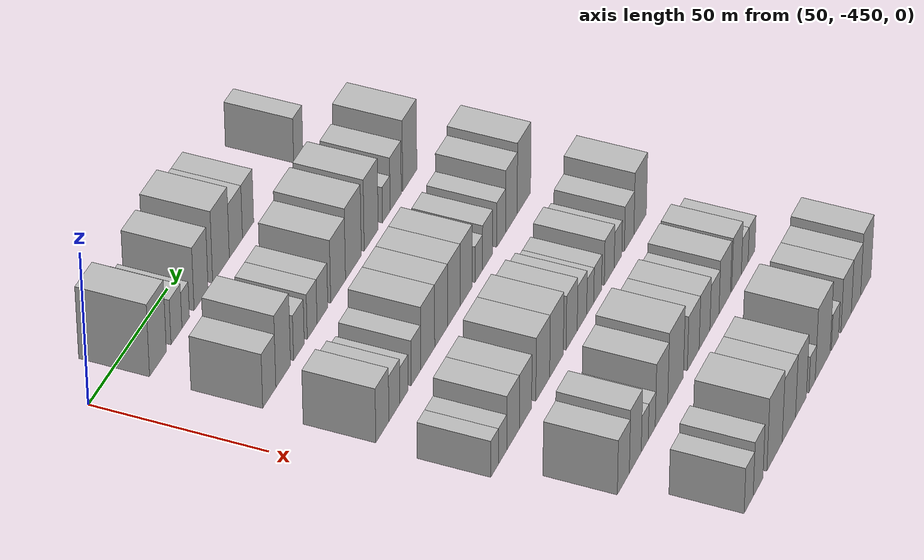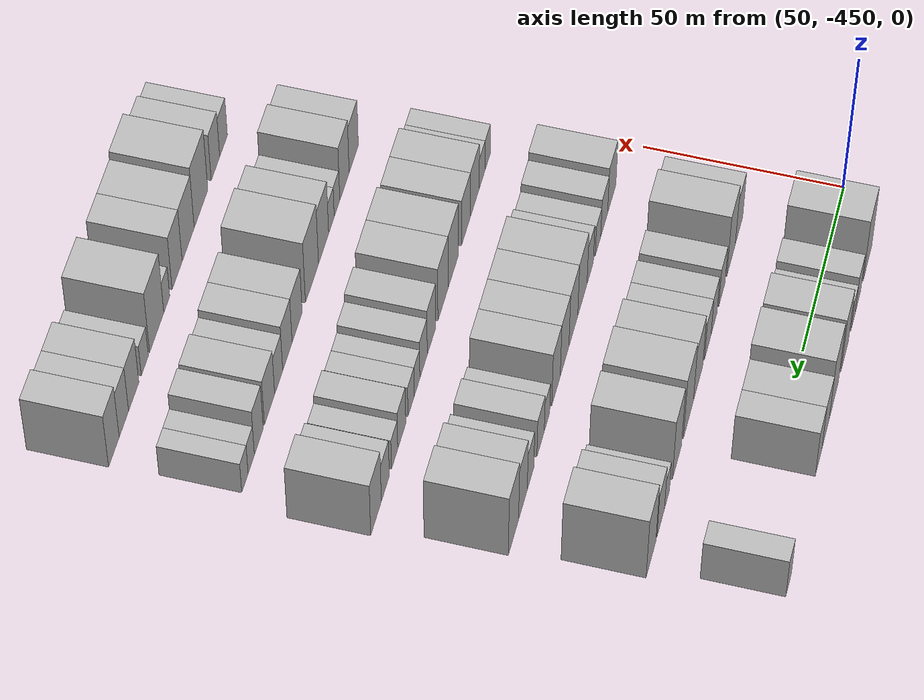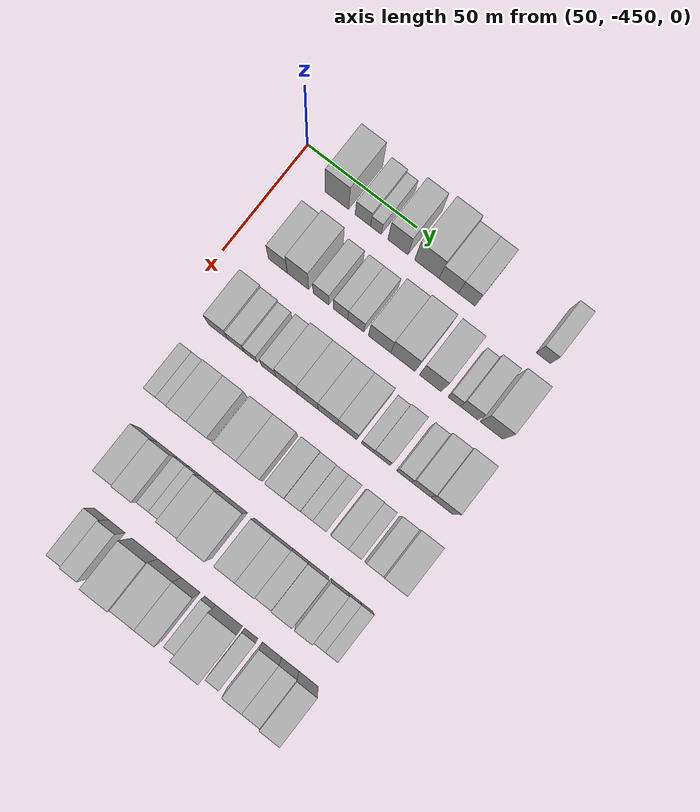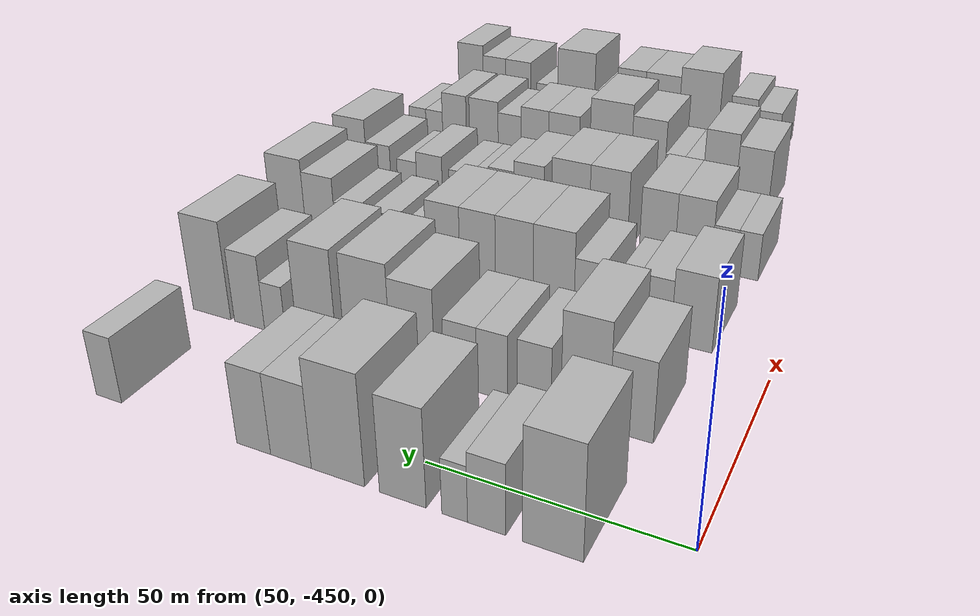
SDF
<sdf version="1.6">
 <world name="default">
  <model name="building_13">
   <static>1</static>
   <pose>50.0000 -428.8946 0 0.000000 0.000000 0.000000</pose>
   <link name="link">
    <pose>0 0 12.00 0 0 0</pose>
    <collision name="collision"><geometry><box><size>20.0000 10.7026 24.0000</size></box></geometry></collision>
    <visual name="visual">
     <cast_shadows>0</cast_shadows>
     <geometry><box><size>20.0000 10.7026 24.0000</size></box></geometry>
     <material>
      <script>
       <uri>model://HANNAS_wall/materials/scripts</uri>
       <uri>model://HANNAS_wall/materials/textures</uri>
       <name>vrc/HANNAS_wall</name>
      </script>
     </material>
    </visual>
   </link>
  </model>
  <model name="building_14">
   <static>1</static>
   <pose>50.0000 -417.0300 0 0.000000 0.000000 0.000000</pose>
   <link name="link">
    <pose>0 0 7.50 0 0 0</pose>
    <collision name="collision"><geometry><box><size>20.0000 7.0265 15.0000</size></box></geometry></collision>
    <visual name="visual">
     <cast_shadows>0</cast_shadows>
     <geometry><box><size>20.0000 7.0265 15.0000</size></box></geometry>
     <material>
      <script>
       <uri>model://HANNAS_wall/materials/scripts</uri>
       <uri>model://HANNAS_wall/materials/textures</uri>
       <name>vrc/HANNAS_wall</name>
      </script>
     </material>
    </visual>
   </link>
  </model>
  <model name="building_15">
   <static>1</static>
   <pose>50.0000 -411.0758 0 0.000000 0.000000 0.000000</pose>
   <link name="link">
    <pose>0 0 6.00 0 0 0</pose>
    <collision name="collision"><geometry><box><size>20.0000 4.8819 12.0000</size></box></geometry></collision>
    <visual name="visual">
     <cast_shadows>0</cast_shadows>
     <geometry><box><size>20.0000 4.8819 12.0000</size></box></geometry>
     <material>
      <script>
       <uri>model://HANNAS_wall/materials/scripts</uri>
       <uri>model://HANNAS_wall/materials/textures</uri>
       <name>vrc/HANNAS_wall</name>
      </script>
     </material>
    </visual>
   </link>
  </model>
  <model name="building_16">
   <static>1</static>
   <pose>50.0000 -401.0472 0 0.000000 0.000000 0.000000</pose>
   <link name="link">
    <pose>0 0 10.50 0 0 0</pose>
    <collision name="collision"><geometry><box><size>20.0000 9.1753 21.0000</size></box></geometry></collision>
    <visual name="visual">
     <cast_shadows>0</cast_shadows>
     <geometry><box><size>20.0000 9.1753 21.0000</size></box></geometry>
     <material>
      <script>
       <uri>model://HANNAS_wall/materials/scripts</uri>
       <uri>model://HANNAS_wall/materials/textures</uri>
       <name>vrc/HANNAS_wall</name>
      </script>
     </material>
    </visual>
   </link>
  </model>
  <model name="building_17">
   <static>1</static>
   <pose>50.0000 -387.9378 0 0.000000 0.000000 0.000000</pose>
   <link name="link">
    <pose>0 0 12.00 0 0 0</pose>
    <collision name="collision"><geometry><box><size>20.0000 11.0435 24.0000</size></box></geometry></collision>
    <visual name="visual">
     <cast_shadows>0</cast_shadows>
     <geometry><box><size>20.0000 11.0435 24.0000</size></box></geometry>
     <material>
      <script>
       <uri>model://HANNAS_wall/materials/scripts</uri>
       <uri>model://HANNAS_wall/materials/textures</uri>
       <name>vrc/HANNAS_wall</name>
      </script>
     </material>
    </visual>
   </link>
  </model>
  <model name="building_18">
   <static>1</static>
   <pose>50.0000 -378.0178 0 0.000000 0.000000 0.000000</pose>
   <link name="link">
    <pose>0 0 9.00 0 0 0</pose>
    <collision name="collision"><geometry><box><size>20.0000 8.7965 18.0000</size></box></geometry></collision>
    <visual name="visual">
     <cast_shadows>0</cast_shadows>
     <geometry><box><size>20.0000 8.7965 18.0000</size></box></geometry>
     <material>
      <script>
       <uri>model://HANNAS_wall/materials/scripts</uri>
       <uri>model://HANNAS_wall/materials/textures</uri>
       <name>vrc/HANNAS_wall</name>
      </script>
     </material>
    </visual>
   </link>
  </model>
  <model name="building_19">
   <static>1</static>
   <pose>50.0000 -369.8452 0 0.000000 0.000000 0.000000</pose>
   <link name="link">
    <pose>0 0 9.00 0 0 0</pose>
    <collision name="collision"><geometry><box><size>20.0000 7.5487 18.0000</size></box></geometry></collision>
    <visual name="visual">
     <cast_shadows>0</cast_shadows>
     <geometry><box><size>20.0000 7.5487 18.0000</size></box></geometry>
     <material>
      <script>
       <uri>model://HANNAS_wall/materials/scripts</uri>
       <uri>model://HANNAS_wall/materials/textures</uri>
       <name>vrc/HANNAS_wall</name>
      </script>
     </material>
    </visual>
   </link>
  </model>
  <model name="building_20">
   <static>1</static>
   <pose>50.0000 -335.5107 0 0.000000 0.000000 0.000000</pose>
   <link name="link">
    <pose>0 0 7.50 0 0 0</pose>
    <collision name="collision"><geometry><box><size>20.0000 6.3734 15.0000</size></box></geometry></collision>
    <visual name="visual">
     <cast_shadows>0</cast_shadows>
     <geometry><box><size>20.0000 6.3734 15.0000</size></box></geometry>
     <material>
      <script>
       <uri>model://HANNAS_wall/materials/scripts</uri>
       <uri>model://HANNAS_wall/materials/textures</uri>
       <name>vrc/HANNAS_wall</name>
      </script>
     </material>
    </visual>
   </link>
  </model>
  <model name="building_127">
   <static>1</static>
   <pose>82.0000 -430.8109 0 0.000000 0.000000 0.000000</pose>
   <link name="link">
    <pose>0 0 9.00 0 0 0</pose>
    <collision name="collision"><geometry><box><size>20.0000 8.6048 18.0000</size></box></geometry></collision>
    <visual name="visual">
     <cast_shadows>0</cast_shadows>
     <geometry><box><size>20.0000 8.6048 18.0000</size></box></geometry>
     <material>
      <script>
       <uri>model://HANNAS_wall/materials/scripts</uri>
       <uri>model://HANNAS_wall/materials/textures</uri>
       <name>vrc/HANNAS_wall</name>
      </script>
     </material>
    </visual>
   </link>
  </model>
  <model name="building_128">
   <static>1</static>
   <pose>82.0000 -421.6455 0 0.000000 0.000000 0.000000</pose>
   <link name="link">
    <pose>0 0 12.00 0 0 0</pose>
    <collision name="collision"><geometry><box><size>20.0000 9.7260 24.0000</size></box></geometry></collision>
    <visual name="visual">
     <cast_shadows>0</cast_shadows>
     <geometry><box><size>20.0000 9.7260 24.0000</size></box></geometry>
     <material>
      <script>
       <uri>model://HANNAS_wall/materials/scripts</uri>
       <uri>model://HANNAS_wall/materials/textures</uri>
       <name>vrc/HANNAS_wall</name>
      </script>
     </material>
    </visual>
   </link>
  </model>
  <model name="building_129">
   <static>1</static>
   <pose>82.0000 -411.2193 0 0.000000 0.000000 0.000000</pose>
   <link name="link">
    <pose>0 0 7.50 0 0 0</pose>
    <collision name="collision"><geometry><box><size>20.0000 7.1265 15.0000</size></box></geometry></collision>
    <visual name="visual">
     <cast_shadows>0</cast_shadows>
     <geometry><box><size>20.0000 7.1265 15.0000</size></box></geometry>
     <material>
      <script>
       <uri>model://HANNAS_wall/materials/scripts</uri>
       <uri>model://HANNAS_wall/materials/textures</uri>
       <name>vrc/HANNAS_wall</name>
      </script>
     </material>
    </visual>
   </link>
  </model>
  <model name="building_130">
   <static>1</static>
   <pose>82.0000 -402.3580 0 0.000000 0.000000 0.000000</pose>
   <link name="link">
    <pose>0 0 7.50 0 0 0</pose>
    <collision name="collision"><geometry><box><size>20.0000 6.5960 15.0000</size></box></geometry></collision>
    <visual name="visual">
     <cast_shadows>0</cast_shadows>
     <geometry><box><size>20.0000 6.5960 15.0000</size></box></geometry>
     <material>
      <script>
       <uri>model://HANNAS_wall/materials/scripts</uri>
       <uri>model://HANNAS_wall/materials/textures</uri>
       <name>vrc/HANNAS_wall</name>
      </script>
     </material>
    </visual>
   </link>
  </model>
  <model name="building_131">
   <static>1</static>
   <pose>82.0000 -395.4198 0 0.000000 0.000000 0.000000</pose>
   <link name="link">
    <pose>0 0 7.50 0 0 0</pose>
    <collision name="collision"><geometry><box><size>20.0000 7.2805 15.0000</size></box></geometry></collision>
    <visual name="visual">
     <cast_shadows>0</cast_shadows>
     <geometry><box><size>20.0000 7.2805 15.0000</size></box></geometry>
     <material>
      <script>
       <uri>model://HANNAS_wall/materials/scripts</uri>
       <uri>model://HANNAS_wall/materials/textures</uri>
       <name>vrc/HANNAS_wall</name>
      </script>
     </material>
    </visual>
   </link>
  </model>
  <model name="building_132">
   <static>1</static>
   <pose>82.0000 -384.7146 0 0.000000 0.000000 0.000000</pose>
   <link name="link">
    <pose>0 0 10.50 0 0 0</pose>
    <collision name="collision"><geometry><box><size>20.0000 10.1299 21.0000</size></box></geometry></collision>
    <visual name="visual">
     <cast_shadows>0</cast_shadows>
     <geometry><box><size>20.0000 10.1299 21.0000</size></box></geometry>
     <material>
      <script>
       <uri>model://HANNAS_wall/materials/scripts</uri>
       <uri>model://HANNAS_wall/materials/textures</uri>
       <name>vrc/HANNAS_wall</name>
      </script>
     </material>
    </visual>
   </link>
  </model>
  <model name="building_133">
   <static>1</static>
   <pose>82.0000 -374.1738 0 0.000000 0.000000 0.000000</pose>
   <link name="link">
    <pose>0 0 12.00 0 0 0</pose>
    <collision name="collision"><geometry><box><size>20.0000 10.9518 24.0000</size></box></geometry></collision>
    <visual name="visual">
     <cast_shadows>0</cast_shadows>
     <geometry><box><size>20.0000 10.9518 24.0000</size></box></geometry>
     <material>
      <script>
       <uri>model://HANNAS_wall/materials/scripts</uri>
       <uri>model://HANNAS_wall/materials/textures</uri>
       <name>vrc/HANNAS_wall</name>
      </script>
     </material>
    </visual>
   </link>
  </model>
  <model name="building_134">
   <static>1</static>
   <pose>82.0000 -361.8038 0 0.000000 0.000000 0.000000</pose>
   <link name="link">
    <pose>0 0 12.00 0 0 0</pose>
    <collision name="collision"><geometry><box><size>20.0000 9.7881 24.0000</size></box></geometry></collision>
    <visual name="visual">
     <cast_shadows>0</cast_shadows>
     <geometry><box><size>20.0000 9.7881 24.0000</size></box></geometry>
     <material>
      <script>
       <uri>model://HANNAS_wall/materials/scripts</uri>
       <uri>model://HANNAS_wall/materials/textures</uri>
       <name>vrc/HANNAS_wall</name>
      </script>
     </material>
    </visual>
   </link>
  </model>
  <model name="building_135">
   <static>1</static>
   <pose>82.0000 -351.1927 0 0.000000 0.000000 0.000000</pose>
   <link name="link">
    <pose>0 0 6.00 0 0 0</pose>
    <collision name="collision"><geometry><box><size>20.0000 5.4339 12.0000</size></box></geometry></collision>
    <visual name="visual">
     <cast_shadows>0</cast_shadows>
     <geometry><box><size>20.0000 5.4339 12.0000</size></box></geometry>
     <material>
      <script>
       <uri>model://HANNAS_wall/materials/scripts</uri>
       <uri>model://HANNAS_wall/materials/textures</uri>
       <name>vrc/HANNAS_wall</name>
      </script>
     </material>
    </visual>
   </link>
  </model>
  <model name="building_136">
   <static>1</static>
   <pose>82.0000 -344.5110 0 0.000000 0.000000 0.000000</pose>
   <link name="link">
    <pose>0 0 9.00 0 0 0</pose>
    <collision name="collision"><geometry><box><size>20.0000 7.9296 18.0000</size></box></geometry></collision>
    <visual name="visual">
     <cast_shadows>0</cast_shadows>
     <geometry><box><size>20.0000 7.9296 18.0000</size></box></geometry>
     <material>
      <script>
       <uri>model://HANNAS_wall/materials/scripts</uri>
       <uri>model://HANNAS_wall/materials/textures</uri>
       <name>vrc/HANNAS_wall</name>
      </script>
     </material>
    </visual>
   </link>
  </model>
  <model name="building_137">
   <static>1</static>
   <pose>82.0000 -334.4686 0 0.000000 0.000000 0.000000</pose>
   <link name="link">
    <pose>0 0 12.00 0 0 0</pose>
    <collision name="collision"><geometry><box><size>20.0000 10.1551 24.0000</size></box></geometry></collision>
    <visual name="visual">
     <cast_shadows>0</cast_shadows>
     <geometry><box><size>20.0000 10.1551 24.0000</size></box></geometry>
     <material>
      <script>
       <uri>model://HANNAS_wall/materials/scripts</uri>
       <uri>model://HANNAS_wall/materials/textures</uri>
       <name>vrc/HANNAS_wall</name>
      </script>
     </material>
    </visual>
   </link>
  </model>
  <model name="building_248">
   <static>1</static>
   <pose>114.0000 -432.5738 0 0.000000 0.000000 0.000000</pose>
   <link name="link">
    <pose>0 0 9.00 0 0 0</pose>
    <collision name="collision"><geometry><box><size>20.0000 8.8628 18.0000</size></box></geometry></collision>
    <visual name="visual">
     <cast_shadows>0</cast_shadows>
     <geometry><box><size>20.0000 8.8628 18.0000</size></box></geometry>
     <material>
      <script>
       <uri>model://HANNAS_wall/materials/scripts</uri>
       <uri>model://HANNAS_wall/materials/textures</uri>
       <name>vrc/HANNAS_wall</name>
      </script>
     </material>
    </visual>
   </link>
  </model>
  <model name="building_249">
   <static>1</static>
   <pose>114.0000 -424.4300 0 0.000000 0.000000 0.000000</pose>
   <link name="link">
    <pose>0 0 7.50 0 0 0</pose>
    <collision name="collision"><geometry><box><size>20.0000 7.4248 15.0000</size></box></geometry></collision>
    <visual name="visual">
     <cast_shadows>0</cast_shadows>
     <geometry><box><size>20.0000 7.4248 15.0000</size></box></geometry>
     <material>
      <script>
       <uri>model://HANNAS_wall/materials/scripts</uri>
       <uri>model://HANNAS_wall/materials/textures</uri>
       <name>vrc/HANNAS_wall</name>
      </script>
     </material>
    </visual>
   </link>
  </model>
  <model name="building_250">
   <static>1</static>
   <pose>114.0000 -417.8449 0 0.000000 0.000000 0.000000</pose>
   <link name="link">
    <pose>0 0 6.00 0 0 0</pose>
    <collision name="collision"><geometry><box><size>20.0000 5.7454 12.0000</size></box></geometry></collision>
    <visual name="visual">
     <cast_shadows>0</cast_shadows>
     <geometry><box><size>20.0000 5.7454 12.0000</size></box></geometry>
     <material>
      <script>
       <uri>model://HANNAS_wall/materials/scripts</uri>
       <uri>model://HANNAS_wall/materials/textures</uri>
       <name>vrc/HANNAS_wall</name>
      </script>
     </material>
    </visual>
   </link>
  </model>
  <model name="building_251">
   <static>1</static>
   <pose>114.0000 -409.6480 0 0.000000 0.000000 0.000000</pose>
   <link name="link">
    <pose>0 0 7.50 0 0 0</pose>
    <collision name="collision"><geometry><box><size>20.0000 6.6483 15.0000</size></box></geometry></collision>
    <visual name="visual">
     <cast_shadows>0</cast_shadows>
     <geometry><box><size>20.0000 6.6483 15.0000</size></box></geometry>
     <material>
      <script>
       <uri>model://HANNAS_wall/materials/scripts</uri>
       <uri>model://HANNAS_wall/materials/textures</uri>
       <name>vrc/HANNAS_wall</name>
      </script>
     </material>
    </visual>
   </link>
  </model>
  <model name="building_252">
   <static>1</static>
   <pose>114.0000 -401.4826 0 0.000000 0.000000 0.000000</pose>
   <link name="link">
    <pose>0 0 10.50 0 0 0</pose>
    <collision name="collision"><geometry><box><size>20.0000 9.6824 21.0000</size></box></geometry></collision>
    <visual name="visual">
     <cast_shadows>0</cast_shadows>
     <geometry><box><size>20.0000 9.6824 21.0000</size></box></geometry>
     <material>
      <script>
       <uri>model://HANNAS_wall/materials/scripts</uri>
       <uri>model://HANNAS_wall/materials/textures</uri>
       <name>vrc/HANNAS_wall</name>
      </script>
     </material>
    </visual>
   </link>
  </model>
  <model name="building_253">
   <static>1</static>
   <pose>114.0000 -392.0811 0 0.000000 0.000000 0.000000</pose>
   <link name="link">
    <pose>0 0 10.50 0 0 0</pose>
    <collision name="collision"><geometry><box><size>20.0000 9.1207 21.0000</size></box></geometry></collision>
    <visual name="visual">
     <cast_shadows>0</cast_shadows>
     <geometry><box><size>20.0000 9.1207 21.0000</size></box></geometry>
     <material>
      <script>
       <uri>model://HANNAS_wall/materials/scripts</uri>
       <uri>model://HANNAS_wall/materials/textures</uri>
       <name>vrc/HANNAS_wall</name>
      </script>
     </material>
    </visual>
   </link>
  </model>
  <model name="building_254">
   <static>1</static>
   <pose>114.0000 -383.1080 0 0.000000 0.000000 0.000000</pose>
   <link name="link">
    <pose>0 0 10.50 0 0 0</pose>
    <collision name="collision"><geometry><box><size>20.0000 8.8255 21.0000</size></box></geometry></collision>
    <visual name="visual">
     <cast_shadows>0</cast_shadows>
     <geometry><box><size>20.0000 8.8255 21.0000</size></box></geometry>
     <material>
      <script>
       <uri>model://HANNAS_wall/materials/scripts</uri>
       <uri>model://HANNAS_wall/materials/textures</uri>
       <name>vrc/HANNAS_wall</name>
      </script>
     </material>
    </visual>
   </link>
  </model>
  <model name="building_255">
   <static>1</static>
   <pose>114.0000 -374.4081 0 0.000000 0.000000 0.000000</pose>
   <link name="link">
    <pose>0 0 10.50 0 0 0</pose>
    <collision name="collision"><geometry><box><size>20.0000 8.5742 21.0000</size></box></geometry></collision>
    <visual name="visual">
     <cast_shadows>0</cast_shadows>
     <geometry><box><size>20.0000 8.5742 21.0000</size></box></geometry>
     <material>
      <script>
       <uri>model://HANNAS_wall/materials/scripts</uri>
       <uri>model://HANNAS_wall/materials/textures</uri>
       <name>vrc/HANNAS_wall</name>
      </script>
     </material>
    </visual>
   </link>
  </model>
  <model name="building_256">
   <static>1</static>
   <pose>114.0000 -365.3776 0 0.000000 0.000000 0.000000</pose>
   <link name="link">
    <pose>0 0 6.00 0 0 0</pose>
    <collision name="collision"><geometry><box><size>20.0000 5.4868 12.0000</size></box></geometry></collision>
    <visual name="visual">
     <cast_shadows>0</cast_shadows>
     <geometry><box><size>20.0000 5.4868 12.0000</size></box></geometry>
     <material>
      <script>
       <uri>model://HANNAS_wall/materials/scripts</uri>
       <uri>model://HANNAS_wall/materials/textures</uri>
       <name>vrc/HANNAS_wall</name>
      </script>
     </material>
    </visual>
   </link>
  </model>
  <model name="building_257">
   <static>1</static>
   <pose>114.0000 -358.9749 0 0.000000 0.000000 0.000000</pose>
   <link name="link">
    <pose>0 0 7.50 0 0 0</pose>
    <collision name="collision"><geometry><box><size>20.0000 7.3188 15.0000</size></box></geometry></collision>
    <visual name="visual">
     <cast_shadows>0</cast_shadows>
     <geometry><box><size>20.0000 7.3188 15.0000</size></box></geometry>
     <material>
      <script>
       <uri>model://HANNAS_wall/materials/scripts</uri>
       <uri>model://HANNAS_wall/materials/textures</uri>
       <name>vrc/HANNAS_wall</name>
      </script>
     </material>
    </visual>
   </link>
  </model>
  <model name="building_258">
   <static>1</static>
   <pose>114.0000 -349.0852 0 0.000000 0.000000 0.000000</pose>
   <link name="link">
    <pose>0 0 7.50 0 0 0</pose>
    <collision name="collision"><geometry><box><size>20.0000 6.4606 15.0000</size></box></geometry></collision>
    <visual name="visual">
     <cast_shadows>0</cast_shadows>
     <geometry><box><size>20.0000 6.4606 15.0000</size></box></geometry>
     <material>
      <script>
       <uri>model://HANNAS_wall/materials/scripts</uri>
       <uri>model://HANNAS_wall/materials/textures</uri>
       <name>vrc/HANNAS_wall</name>
      </script>
     </material>
    </visual>
   </link>
  </model>
  <model name="building_259">
   <static>1</static>
   <pose>114.0000 -341.6334 0 0.000000 0.000000 0.000000</pose>
   <link name="link">
    <pose>0 0 10.50 0 0 0</pose>
    <collision name="collision"><geometry><box><size>20.0000 8.4430 21.0000</size></box></geometry></collision>
    <visual name="visual">
     <cast_shadows>0</cast_shadows>
     <geometry><box><size>20.0000 8.4430 21.0000</size></box></geometry>
     <material>
      <script>
       <uri>model://HANNAS_wall/materials/scripts</uri>
       <uri>model://HANNAS_wall/materials/textures</uri>
       <name>vrc/HANNAS_wall</name>
      </script>
     </material>
    </visual>
   </link>
  </model>
  <model name="building_260">
   <static>1</static>
   <pose>114.0000 -332.4550 0 0.000000 0.000000 0.000000</pose>
   <link name="link">
    <pose>0 0 12.00 0 0 0</pose>
    <collision name="collision"><geometry><box><size>20.0000 9.9138 24.0000</size></box></geometry></collision>
    <visual name="visual">
     <cast_shadows>0</cast_shadows>
     <geometry><box><size>20.0000 9.9138 24.0000</size></box></geometry>
     <material>
      <script>
       <uri>model://HANNAS_wall/materials/scripts</uri>
       <uri>model://HANNAS_wall/materials/textures</uri>
       <name>vrc/HANNAS_wall</name>
      </script>
     </material>
    </visual>
   </link>
  </model>
  <model name="building_362">
   <static>1</static>
   <pose>146.0000 -436.0674 0 0.000000 0.000000 0.000000</pose>
   <link name="link">
    <pose>0 0 6.00 0 0 0</pose>
    <collision name="collision"><geometry><box><size>20.0000 5.2676 12.0000</size></box></geometry></collision>
    <visual name="visual">
     <cast_shadows>0</cast_shadows>
     <geometry><box><size>20.0000 5.2676 12.0000</size></box></geometry>
     <material>
      <script>
       <uri>model://HANNAS_wall/materials/scripts</uri>
       <uri>model://HANNAS_wall/materials/textures</uri>
       <name>vrc/HANNAS_wall</name>
      </script>
     </material>
    </visual>
   </link>
  </model>
  <model name="building_363">
   <static>1</static>
   <pose>146.0000 -430.5383 0 0.000000 0.000000 0.000000</pose>
   <link name="link">
    <pose>0 0 6.00 0 0 0</pose>
    <collision name="collision"><geometry><box><size>20.0000 5.7907 12.0000</size></box></geometry></collision>
    <visual name="visual">
     <cast_shadows>0</cast_shadows>
     <geometry><box><size>20.0000 5.7907 12.0000</size></box></geometry>
     <material>
      <script>
       <uri>model://HANNAS_wall/materials/scripts</uri>
       <uri>model://HANNAS_wall/materials/textures</uri>
       <name>vrc/HANNAS_wall</name>
      </script>
     </material>
    </visual>
   </link>
  </model>
  <model name="building_364">
   <static>1</static>
   <pose>146.0000 -423.2183 0 0.000000 0.000000 0.000000</pose>
   <link name="link">
    <pose>0 0 9.00 0 0 0</pose>
    <collision name="collision"><geometry><box><size>20.0000 8.8492 18.0000</size></box></geometry></collision>
    <visual name="visual">
     <cast_shadows>0</cast_shadows>
     <geometry><box><size>20.0000 8.8492 18.0000</size></box></geometry>
     <material>
      <script>
       <uri>model://HANNAS_wall/materials/scripts</uri>
       <uri>model://HANNAS_wall/materials/textures</uri>
       <name>vrc/HANNAS_wall</name>
      </script>
     </material>
    </visual>
   </link>
  </model>
  <model name="building_365">
   <static>1</static>
   <pose>146.0000 -414.3992 0 0.000000 0.000000 0.000000</pose>
   <link name="link">
    <pose>0 0 9.00 0 0 0</pose>
    <collision name="collision"><geometry><box><size>20.0000 8.7889 18.0000</size></box></geometry></collision>
    <visual name="visual">
     <cast_shadows>0</cast_shadows>
     <geometry><box><size>20.0000 8.7889 18.0000</size></box></geometry>
     <material>
      <script>
       <uri>model://HANNAS_wall/materials/scripts</uri>
       <uri>model://HANNAS_wall/materials/textures</uri>
       <name>vrc/HANNAS_wall</name>
      </script>
     </material>
    </visual>
   </link>
  </model>
  <model name="building_366">
   <static>1</static>
   <pose>146.0000 -402.0413 0 0.000000 0.000000 0.000000</pose>
   <link name="link">
    <pose>0 0 10.50 0 0 0</pose>
    <collision name="collision"><geometry><box><size>20.0000 9.9270 21.0000</size></box></geometry></collision>
    <visual name="visual">
     <cast_shadows>0</cast_shadows>
     <geometry><box><size>20.0000 9.9270 21.0000</size></box></geometry>
     <material>
      <script>
       <uri>model://HANNAS_wall/materials/scripts</uri>
       <uri>model://HANNAS_wall/materials/textures</uri>
       <name>vrc/HANNAS_wall</name>
      </script>
     </material>
    </visual>
   </link>
  </model>
  <model name="building_367">
   <static>1</static>
   <pose>146.0000 -392.1249 0 0.000000 0.000000 0.000000</pose>
   <link name="link">
    <pose>0 0 10.50 0 0 0</pose>
    <collision name="collision"><geometry><box><size>20.0000 9.9057 21.0000</size></box></geometry></collision>
    <visual name="visual">
     <cast_shadows>0</cast_shadows>
     <geometry><box><size>20.0000 9.9057 21.0000</size></box></geometry>
     <material>
      <script>
       <uri>model://HANNAS_wall/materials/scripts</uri>
       <uri>model://HANNAS_wall/materials/textures</uri>
       <name>vrc/HANNAS_wall</name>
      </script>
     </material>
    </visual>
   </link>
  </model>
  <model name="building_368">
   <static>1</static>
   <pose>146.0000 -381.0893 0 0.000000 0.000000 0.000000</pose>
   <link name="link">
    <pose>0 0 9.00 0 0 0</pose>
    <collision name="collision"><geometry><box><size>20.0000 8.1655 18.0000</size></box></geometry></collision>
    <visual name="visual">
     <cast_shadows>0</cast_shadows>
     <geometry><box><size>20.0000 8.1655 18.0000</size></box></geometry>
     <material>
      <script>
       <uri>model://HANNAS_wall/materials/scripts</uri>
       <uri>model://HANNAS_wall/materials/textures</uri>
       <name>vrc/HANNAS_wall</name>
      </script>
     </material>
    </visual>
   </link>
  </model>
  <model name="building_369">
   <static>1</static>
   <pose>146.0000 -373.5006 0 0.000000 0.000000 0.000000</pose>
   <link name="link">
    <pose>0 0 7.50 0 0 0</pose>
    <collision name="collision"><geometry><box><size>20.0000 7.0121 15.0000</size></box></geometry></collision>
    <visual name="visual">
     <cast_shadows>0</cast_shadows>
     <geometry><box><size>20.0000 7.0121 15.0000</size></box></geometry>
     <material>
      <script>
       <uri>model://HANNAS_wall/materials/scripts</uri>
       <uri>model://HANNAS_wall/materials/textures</uri>
       <name>vrc/HANNAS_wall</name>
      </script>
     </material>
    </visual>
   </link>
  </model>
  <model name="building_370">
   <static>1</static>
   <pose>146.0000 -367.3667 0 0.000000 0.000000 0.000000</pose>
   <link name="link">
    <pose>0 0 6.00 0 0 0</pose>
    <collision name="collision"><geometry><box><size>20.0000 5.2557 12.0000</size></box></geometry></collision>
    <visual name="visual">
     <cast_shadows>0</cast_shadows>
     <geometry><box><size>20.0000 5.2557 12.0000</size></box></geometry>
     <material>
      <script>
       <uri>model://HANNAS_wall/materials/scripts</uri>
       <uri>model://HANNAS_wall/materials/textures</uri>
       <name>vrc/HANNAS_wall</name>
      </script>
     </material>
    </visual>
   </link>
  </model>
  <model name="building_371">
   <static>1</static>
   <pose>146.0000 -361.8163 0 0.000000 0.000000 0.000000</pose>
   <link name="link">
    <pose>0 0 6.00 0 0 0</pose>
    <collision name="collision"><geometry><box><size>20.0000 5.8450 12.0000</size></box></geometry></collision>
    <visual name="visual">
     <cast_shadows>0</cast_shadows>
     <geometry><box><size>20.0000 5.8450 12.0000</size></box></geometry>
     <material>
      <script>
       <uri>model://HANNAS_wall/materials/scripts</uri>
       <uri>model://HANNAS_wall/materials/textures</uri>
       <name>vrc/HANNAS_wall</name>
      </script>
     </material>
    </visual>
   </link>
  </model>
  <model name="building_372">
   <static>1</static>
   <pose>146.0000 -353.1613 0 0.000000 0.000000 0.000000</pose>
   <link name="link">
    <pose>0 0 7.50 0 0 0</pose>
    <collision name="collision"><geometry><box><size>20.0000 7.4650 15.0000</size></box></geometry></collision>
    <visual name="visual">
     <cast_shadows>0</cast_shadows>
     <geometry><box><size>20.0000 7.4650 15.0000</size></box></geometry>
     <material>
      <script>
       <uri>model://HANNAS_wall/materials/scripts</uri>
       <uri>model://HANNAS_wall/materials/textures</uri>
       <name>vrc/HANNAS_wall</name>
      </script>
     </material>
    </visual>
   </link>
  </model>
  <model name="building_373">
   <static>1</static>
   <pose>146.0000 -346.5597 0 0.000000 0.000000 0.000000</pose>
   <link name="link">
    <pose>0 0 6.00 0 0 0</pose>
    <collision name="collision"><geometry><box><size>20.0000 5.7382 12.0000</size></box></geometry></collision>
    <visual name="visual">
     <cast_shadows>0</cast_shadows>
     <geometry><box><size>20.0000 5.7382 12.0000</size></box></geometry>
     <material>
      <script>
       <uri>model://HANNAS_wall/materials/scripts</uri>
       <uri>model://HANNAS_wall/materials/textures</uri>
       <name>vrc/HANNAS_wall</name>
      </script>
     </material>
    </visual>
   </link>
  </model>
  <model name="building_374">
   <static>1</static>
   <pose>146.0000 -338.0703 0 0.000000 0.000000 0.000000</pose>
   <link name="link">
    <pose>0 0 7.50 0 0 0</pose>
    <collision name="collision"><geometry><box><size>20.0000 7.2404 15.0000</size></box></geometry></collision>
    <visual name="visual">
     <cast_shadows>0</cast_shadows>
     <geometry><box><size>20.0000 7.2404 15.0000</size></box></geometry>
     <material>
      <script>
       <uri>model://HANNAS_wall/materials/scripts</uri>
       <uri>model://HANNAS_wall/materials/textures</uri>
       <name>vrc/HANNAS_wall</name>
      </script>
     </material>
    </visual>
   </link>
  </model>
  <model name="building_375">
   <static>1</static>
   <pose>146.0000 -329.6710 0 0.000000 0.000000 0.000000</pose>
   <link name="link">
    <pose>0 0 10.50 0 0 0</pose>
    <collision name="collision"><geometry><box><size>20.0000 9.5583 21.0000</size></box></geometry></collision>
    <visual name="visual">
     <cast_shadows>0</cast_shadows>
     <geometry><box><size>20.0000 9.5583 21.0000</size></box></geometry>
     <material>
      <script>
       <uri>model://HANNAS_wall/materials/scripts</uri>
       <uri>model://HANNAS_wall/materials/textures</uri>
       <name>vrc/HANNAS_wall</name>
      </script>
     </material>
    </visual>
   </link>
  </model>
  <model name="building_472">
   <static>1</static>
   <pose>178.0000 -428.9489 0 0.000000 0.000000 0.000000</pose>
   <link name="link">
    <pose>0 0 9.00 0 0 0</pose>
    <collision name="collision"><geometry><box><size>20.0000 8.6640 18.0000</size></box></geometry></collision>
    <visual name="visual">
     <cast_shadows>0</cast_shadows>
     <geometry><box><size>20.0000 8.6640 18.0000</size></box></geometry>
     <material>
      <script>
       <uri>model://HANNAS_wall/materials/scripts</uri>
       <uri>model://HANNAS_wall/materials/textures</uri>
       <name>vrc/HANNAS_wall</name>
      </script>
     </material>
    </visual>
   </link>
  </model>
  <model name="building_473">
   <static>1</static>
   <pose>178.0000 -420.2496 0 0.000000 0.000000 0.000000</pose>
   <link name="link">
    <pose>0 0 10.50 0 0 0</pose>
    <collision name="collision"><geometry><box><size>20.0000 8.7348 21.0000</size></box></geometry></collision>
    <visual name="visual">
     <cast_shadows>0</cast_shadows>
     <geometry><box><size>20.0000 8.7348 21.0000</size></box></geometry>
     <material>
      <script>
       <uri>model://HANNAS_wall/materials/scripts</uri>
       <uri>model://HANNAS_wall/materials/textures</uri>
       <name>vrc/HANNAS_wall</name>
      </script>
     </material>
    </visual>
   </link>
  </model>
  <model name="building_474">
   <static>1</static>
   <pose>178.0000 -413.3111 0 0.000000 0.000000 0.000000</pose>
   <link name="link">
    <pose>0 0 6.00 0 0 0</pose>
    <collision name="collision"><geometry><box><size>20.0000 5.1422 12.0000</size></box></geometry></collision>
    <visual name="visual">
     <cast_shadows>0</cast_shadows>
     <geometry><box><size>20.0000 5.1422 12.0000</size></box></geometry>
     <material>
      <script>
       <uri>model://HANNAS_wall/materials/scripts</uri>
       <uri>model://HANNAS_wall/materials/textures</uri>
       <name>vrc/HANNAS_wall</name>
      </script>
     </material>
    </visual>
   </link>
  </model>
  <model name="building_475">
   <static>1</static>
   <pose>178.0000 -408.1643 0 0.000000 0.000000 0.000000</pose>
   <link name="link">
    <pose>0 0 6.00 0 0 0</pose>
    <collision name="collision"><geometry><box><size>20.0000 5.1514 12.0000</size></box></geometry></collision>
    <visual name="visual">
     <cast_shadows>0</cast_shadows>
     <geometry><box><size>20.0000 5.1514 12.0000</size></box></geometry>
     <material>
      <script>
       <uri>model://HANNAS_wall/materials/scripts</uri>
       <uri>model://HANNAS_wall/materials/textures</uri>
       <name>vrc/HANNAS_wall</name>
      </script>
     </material>
    </visual>
   </link>
  </model>
  <model name="building_476">
   <static>1</static>
   <pose>178.0000 -400.9416 0 0.000000 0.000000 0.000000</pose>
   <link name="link">
    <pose>0 0 10.50 0 0 0</pose>
    <collision name="collision"><geometry><box><size>20.0000 9.2940 21.0000</size></box></geometry></collision>
    <visual name="visual">
     <cast_shadows>0</cast_shadows>
     <geometry><box><size>20.0000 9.2940 21.0000</size></box></geometry>
     <material>
      <script>
       <uri>model://HANNAS_wall/materials/scripts</uri>
       <uri>model://HANNAS_wall/materials/textures</uri>
       <name>vrc/HANNAS_wall</name>
      </script>
     </material>
    </visual>
   </link>
  </model>
  <model name="building_477">
   <static>1</static>
   <pose>178.0000 -390.3869 0 0.000000 0.000000 0.000000</pose>
   <link name="link">
    <pose>0 0 12.00 0 0 0</pose>
    <collision name="collision"><geometry><box><size>20.0000 11.8154 24.0000</size></box></geometry></collision>
    <visual name="visual">
     <cast_shadows>0</cast_shadows>
     <geometry><box><size>20.0000 11.8154 24.0000</size></box></geometry>
     <material>
      <script>
       <uri>model://HANNAS_wall/materials/scripts</uri>
       <uri>model://HANNAS_wall/materials/textures</uri>
       <name>vrc/HANNAS_wall</name>
      </script>
     </material>
    </visual>
   </link>
  </model>
  <model name="building_478">
   <static>1</static>
   <pose>178.0000 -376.9908 0 0.000000 0.000000 0.000000</pose>
   <link name="link">
    <pose>0 0 9.00 0 0 0</pose>
    <collision name="collision"><geometry><box><size>20.0000 8.9768 18.0000</size></box></geometry></collision>
    <visual name="visual">
     <cast_shadows>0</cast_shadows>
     <geometry><box><size>20.0000 8.9768 18.0000</size></box></geometry>
     <material>
      <script>
       <uri>model://HANNAS_wall/materials/scripts</uri>
       <uri>model://HANNAS_wall/materials/textures</uri>
       <name>vrc/HANNAS_wall</name>
      </script>
     </material>
    </visual>
   </link>
  </model>
  <model name="building_479">
   <static>1</static>
   <pose>178.0000 -368.3549 0 0.000000 0.000000 0.000000</pose>
   <link name="link">
    <pose>0 0 9.00 0 0 0</pose>
    <collision name="collision"><geometry><box><size>20.0000 8.2950 18.0000</size></box></geometry></collision>
    <visual name="visual">
     <cast_shadows>0</cast_shadows>
     <geometry><box><size>20.0000 8.2950 18.0000</size></box></geometry>
     <material>
      <script>
       <uri>model://HANNAS_wall/materials/scripts</uri>
       <uri>model://HANNAS_wall/materials/textures</uri>
       <name>vrc/HANNAS_wall</name>
      </script>
     </material>
    </visual>
   </link>
  </model>
  <model name="building_480">
   <static>1</static>
   <pose>178.0000 -360.6990 0 0.000000 0.000000 0.000000</pose>
   <link name="link">
    <pose>0 0 7.50 0 0 0</pose>
    <collision name="collision"><geometry><box><size>20.0000 7.0168 15.0000</size></box></geometry></collision>
    <visual name="visual">
     <cast_shadows>0</cast_shadows>
     <geometry><box><size>20.0000 7.0168 15.0000</size></box></geometry>
     <material>
      <script>
       <uri>model://HANNAS_wall/materials/scripts</uri>
       <uri>model://HANNAS_wall/materials/textures</uri>
       <name>vrc/HANNAS_wall</name>
      </script>
     </material>
    </visual>
   </link>
  </model>
  <model name="building_481">
   <static>1</static>
   <pose>178.0000 -352.7246 0 0.000000 0.000000 0.000000</pose>
   <link name="link">
    <pose>0 0 9.00 0 0 0</pose>
    <collision name="collision"><geometry><box><size>20.0000 8.9319 18.0000</size></box></geometry></collision>
    <visual name="visual">
     <cast_shadows>0</cast_shadows>
     <geometry><box><size>20.0000 8.9319 18.0000</size></box></geometry>
     <material>
      <script>
       <uri>model://HANNAS_wall/materials/scripts</uri>
       <uri>model://HANNAS_wall/materials/textures</uri>
       <name>vrc/HANNAS_wall</name>
      </script>
     </material>
    </visual>
   </link>
  </model>
  <model name="building_482">
   <static>1</static>
   <pose>178.0000 -343.4516 0 0.000000 0.000000 0.000000</pose>
   <link name="link">
    <pose>0 0 9.00 0 0 0</pose>
    <collision name="collision"><geometry><box><size>20.0000 7.6142 18.0000</size></box></geometry></collision>
    <visual name="visual">
     <cast_shadows>0</cast_shadows>
     <geometry><box><size>20.0000 7.6142 18.0000</size></box></geometry>
     <material>
      <script>
       <uri>model://HANNAS_wall/materials/scripts</uri>
       <uri>model://HANNAS_wall/materials/textures</uri>
       <name>vrc/HANNAS_wall</name>
      </script>
     </material>
    </visual>
   </link>
  </model>
  <model name="building_483">
   <static>1</static>
   <pose>178.0000 -336.9571 0 0.000000 0.000000 0.000000</pose>
   <link name="link">
    <pose>0 0 6.00 0 0 0</pose>
    <collision name="collision"><geometry><box><size>20.0000 5.3749 12.0000</size></box></geometry></collision>
    <visual name="visual">
     <cast_shadows>0</cast_shadows>
     <geometry><box><size>20.0000 5.3749 12.0000</size></box></geometry>
     <material>
      <script>
       <uri>model://HANNAS_wall/materials/scripts</uri>
       <uri>model://HANNAS_wall/materials/textures</uri>
       <name>vrc/HANNAS_wall</name>
      </script>
     </material>
    </visual>
   </link>
  </model>
  <model name="building_484">
   <static>1</static>
   <pose>178.0000 -331.5773 0 0.000000 0.000000 0.000000</pose>
   <link name="link">
    <pose>0 0 6.00 0 0 0</pose>
    <collision name="collision"><geometry><box><size>20.0000 5.3846 12.0000</size></box></geometry></collision>
    <visual name="visual">
     <cast_shadows>0</cast_shadows>
     <geometry><box><size>20.0000 5.3846 12.0000</size></box></geometry>
     <material>
      <script>
       <uri>model://HANNAS_wall/materials/scripts</uri>
       <uri>model://HANNAS_wall/materials/textures</uri>
       <name>vrc/HANNAS_wall</name>
      </script>
     </material>
    </visual>
   </link>
  </model>
  <model name="building_598">
   <static>1</static>
   <pose>210.0000 -424.9339 0 0.000000 0.000000 0.000000</pose>
   <link name="link">
    <pose>0 0 7.50 0 0 0</pose>
    <collision name="collision"><geometry><box><size>20.0000 6.8022 15.0000</size></box></geometry></collision>
    <visual name="visual">
     <cast_shadows>0</cast_shadows>
     <geometry><box><size>20.0000 6.8022 15.0000</size></box></geometry>
     <material>
      <script>
       <uri>model://HANNAS_wall/materials/scripts</uri>
       <uri>model://HANNAS_wall/materials/textures</uri>
       <name>vrc/HANNAS_wall</name>
      </script>
     </material>
    </visual>
   </link>
  </model>
  <model name="building_599">
   <static>1</static>
   <pose>210.0000 -417.8002 0 0.000000 0.000000 0.000000</pose>
   <link name="link">
    <pose>0 0 9.00 0 0 0</pose>
    <collision name="collision"><geometry><box><size>20.0000 7.4652 18.0000</size></box></geometry></collision>
    <visual name="visual">
     <cast_shadows>0</cast_shadows>
     <geometry><box><size>20.0000 7.4652 18.0000</size></box></geometry>
     <material>
      <script>
       <uri>model://HANNAS_wall/materials/scripts</uri>
       <uri>model://HANNAS_wall/materials/textures</uri>
       <name>vrc/HANNAS_wall</name>
      </script>
     </material>
    </visual>
   </link>
  </model>
  <model name="building_600">
   <static>1</static>
   <pose>210.0000 -405.1631 0 0.000000 0.000000 0.000000</pose>
   <link name="link">
    <pose>0 0 12.00 0 0 0</pose>
    <collision name="collision"><geometry><box><size>20.0000 11.8089 24.0000</size></box></geometry></collision>
    <visual name="visual">
     <cast_shadows>0</cast_shadows>
     <geometry><box><size>20.0000 11.8089 24.0000</size></box></geometry>
     <material>
      <script>
       <uri>model://HANNAS_wall/materials/scripts</uri>
       <uri>model://HANNAS_wall/materials/textures</uri>
       <name>vrc/HANNAS_wall</name>
      </script>
     </material>
    </visual>
   </link>
  </model>
  <model name="building_601">
   <static>1</static>
   <pose>210.0000 -394.0763 0 0.000000 0.000000 0.000000</pose>
   <link name="link">
    <pose>0 0 10.50 0 0 0</pose>
    <collision name="collision"><geometry><box><size>20.0000 10.3647 21.0000</size></box></geometry></collision>
    <visual name="visual">
     <cast_shadows>0</cast_shadows>
     <geometry><box><size>20.0000 10.3647 21.0000</size></box></geometry>
     <material>
      <script>
       <uri>model://HANNAS_wall/materials/scripts</uri>
       <uri>model://HANNAS_wall/materials/textures</uri>
       <name>vrc/HANNAS_wall</name>
      </script>
     </material>
    </visual>
   </link>
  </model>
  <model name="building_602">
   <static>1</static>
   <pose>210.0000 -384.6146 0 0.000000 0.000000 0.000000</pose>
   <link name="link">
    <pose>0 0 10.50 0 0 0</pose>
    <collision name="collision"><geometry><box><size>20.0000 8.5588 21.0000</size></box></geometry></collision>
    <visual name="visual">
     <cast_shadows>0</cast_shadows>
     <geometry><box><size>20.0000 8.5588 21.0000</size></box></geometry>
     <material>
      <script>
       <uri>model://HANNAS_wall/materials/scripts</uri>
       <uri>model://HANNAS_wall/materials/textures</uri>
       <name>vrc/HANNAS_wall</name>
      </script>
     </material>
    </visual>
   </link>
  </model>
  <model name="building_603">
   <static>1</static>
   <pose>210.0000 -375.8470 0 0.000000 0.000000 0.000000</pose>
   <link name="link">
    <pose>0 0 6.00 0 0 0</pose>
    <collision name="collision"><geometry><box><size>20.0000 4.9765 12.0000</size></box></geometry></collision>
    <visual name="visual">
     <cast_shadows>0</cast_shadows>
     <geometry><box><size>20.0000 4.9765 12.0000</size></box></geometry>
     <material>
      <script>
       <uri>model://HANNAS_wall/materials/scripts</uri>
       <uri>model://HANNAS_wall/materials/textures</uri>
       <name>vrc/HANNAS_wall</name>
      </script>
     </material>
    </visual>
   </link>
  </model>
  <model name="building_604">
   <static>1</static>
   <pose>210.0000 -367.4085 0 0.000000 0.000000 0.000000</pose>
   <link name="link">
    <pose>0 0 12.00 0 0 0</pose>
    <collision name="collision"><geometry><box><size>20.0000 11.9003 24.0000</size></box></geometry></collision>
    <visual name="visual">
     <cast_shadows>0</cast_shadows>
     <geometry><box><size>20.0000 11.9003 24.0000</size></box></geometry>
     <material>
      <script>
       <uri>model://HANNAS_wall/materials/scripts</uri>
       <uri>model://HANNAS_wall/materials/textures</uri>
       <name>vrc/HANNAS_wall</name>
      </script>
     </material>
    </visual>
   </link>
  </model>
  <model name="building_605">
   <static>1</static>
   <pose>210.0000 -357.5429 0 0.000000 0.000000 0.000000</pose>
   <link name="link">
    <pose>0 0 6.00 0 0 0</pose>
    <collision name="collision"><geometry><box><size>20.0000 5.8308 12.0000</size></box></geometry></collision>
    <visual name="visual">
     <cast_shadows>0</cast_shadows>
     <geometry><box><size>20.0000 5.8308 12.0000</size></box></geometry>
     <material>
      <script>
       <uri>model://HANNAS_wall/materials/scripts</uri>
       <uri>model://HANNAS_wall/materials/textures</uri>
       <name>vrc/HANNAS_wall</name>
      </script>
     </material>
    </visual>
   </link>
  </model>
  <model name="building_606">
   <static>1</static>
   <pose>210.0000 -348.4280 0 0.000000 0.000000 0.000000</pose>
   <link name="link">
    <pose>0 0 9.00 0 0 0</pose>
    <collision name="collision"><geometry><box><size>20.0000 8.3991 18.0000</size></box></geometry></collision>
    <visual name="visual">
     <cast_shadows>0</cast_shadows>
     <geometry><box><size>20.0000 8.3991 18.0000</size></box></geometry>
     <material>
      <script>
       <uri>model://HANNAS_wall/materials/scripts</uri>
       <uri>model://HANNAS_wall/materials/textures</uri>
       <name>vrc/HANNAS_wall</name>
      </script>
     </material>
    </visual>
   </link>
  </model>
  <model name="building_607">
   <static>1</static>
   <pose>210.0000 -340.4248 0 0.000000 0.000000 0.000000</pose>
   <link name="link">
    <pose>0 0 9.00 0 0 0</pose>
    <collision name="collision"><geometry><box><size>20.0000 7.6073 18.0000</size></box></geometry></collision>
    <visual name="visual">
     <cast_shadows>0</cast_shadows>
     <geometry><box><size>20.0000 7.6073 18.0000</size></box></geometry>
     <material>
      <script>
       <uri>model://HANNAS_wall/materials/scripts</uri>
       <uri>model://HANNAS_wall/materials/textures</uri>
       <name>vrc/HANNAS_wall</name>
      </script>
     </material>
    </visual>
   </link>
  </model>
  <model name="building_608">
   <static>1</static>
   <pose>210.0000 -332.3400 0 0.000000 0.000000 0.000000</pose>
   <link name="link">
    <pose>0 0 10.50 0 0 0</pose>
    <collision name="collision"><geometry><box><size>20.0000 8.5622 21.0000</size></box></geometry></collision>
    <visual name="visual">
     <cast_shadows>0</cast_shadows>
     <geometry><box><size>20.0000 8.5622 21.0000</size></box></geometry>
     <material>
      <script>
       <uri>model://HANNAS_wall/materials/scripts</uri>
       <uri>model://HANNAS_wall/materials/textures</uri>
       <name>vrc/HANNAS_wall</name>
      </script>
     </material>
    </visual>
   </link>
  </model>
 </world>
</sdf>
